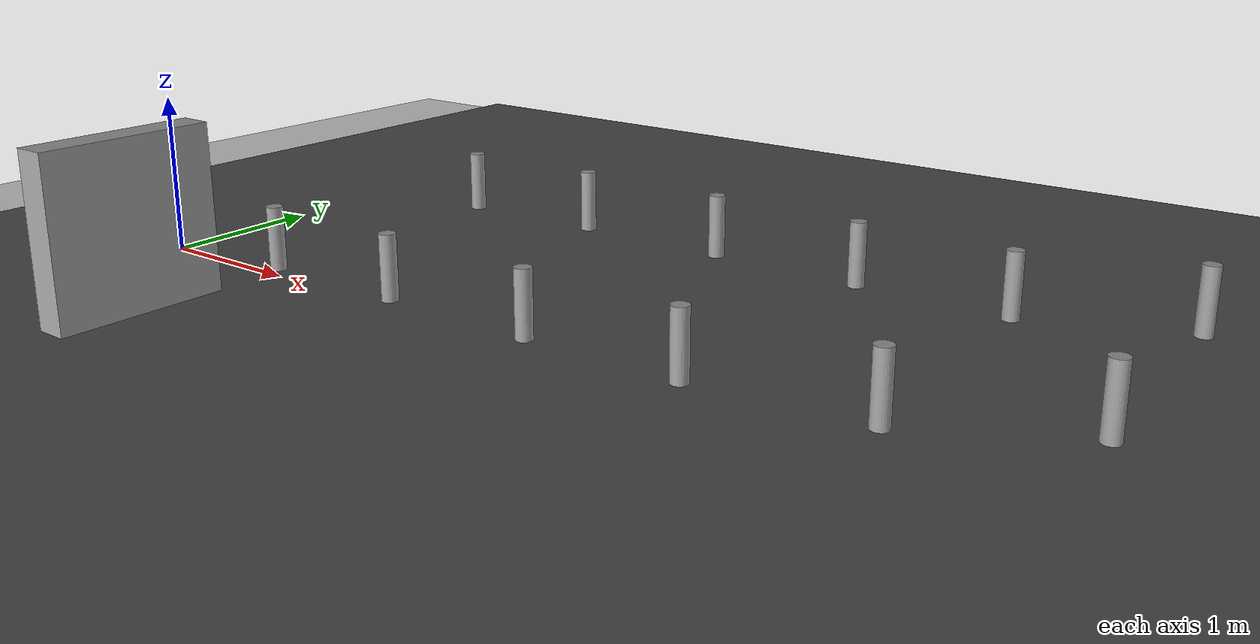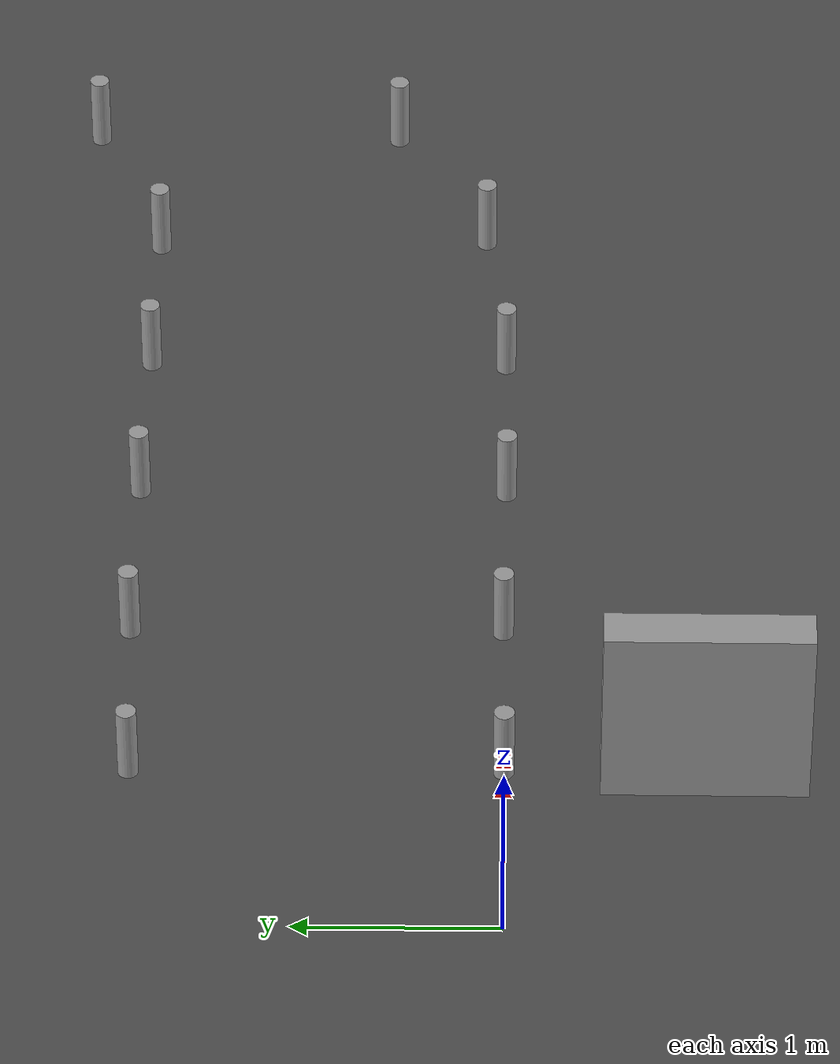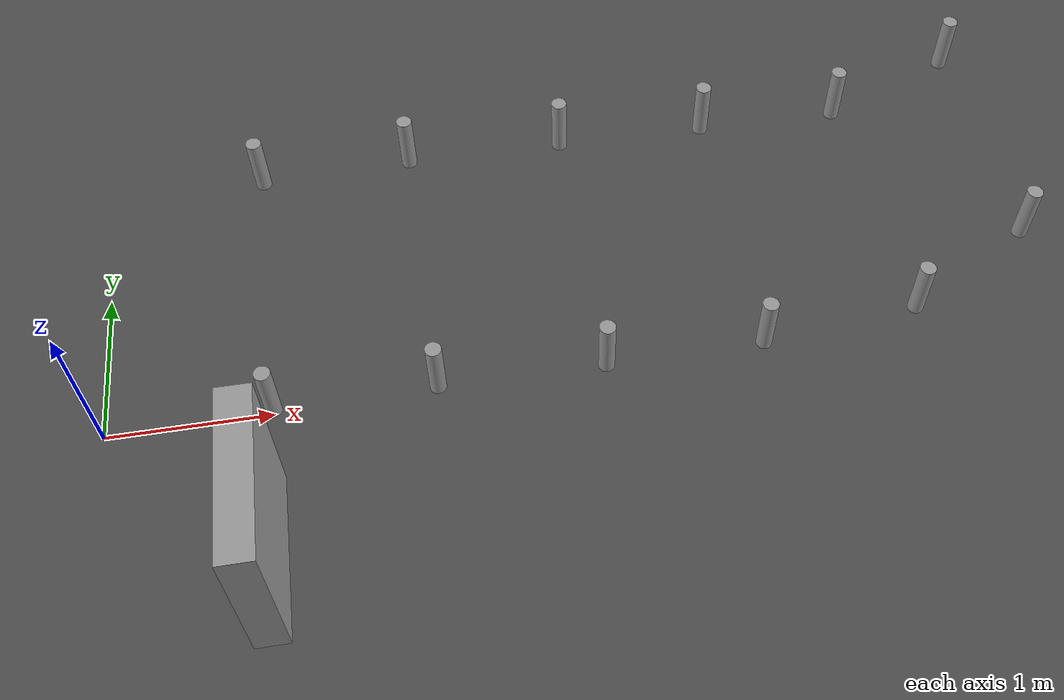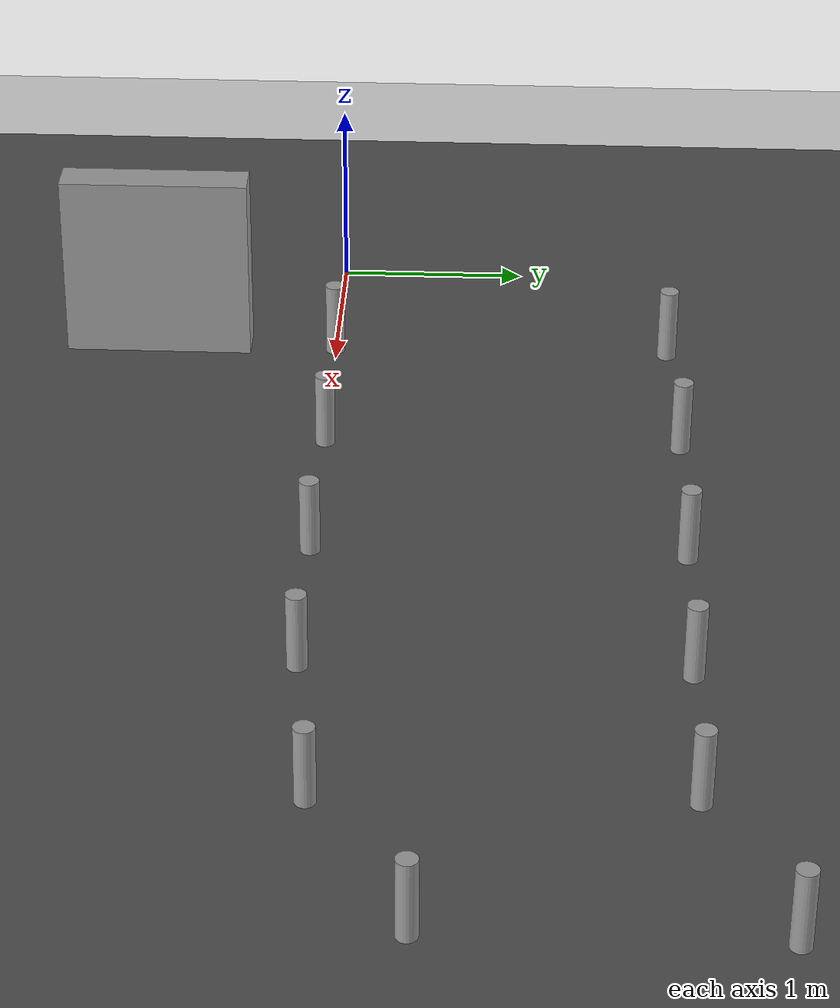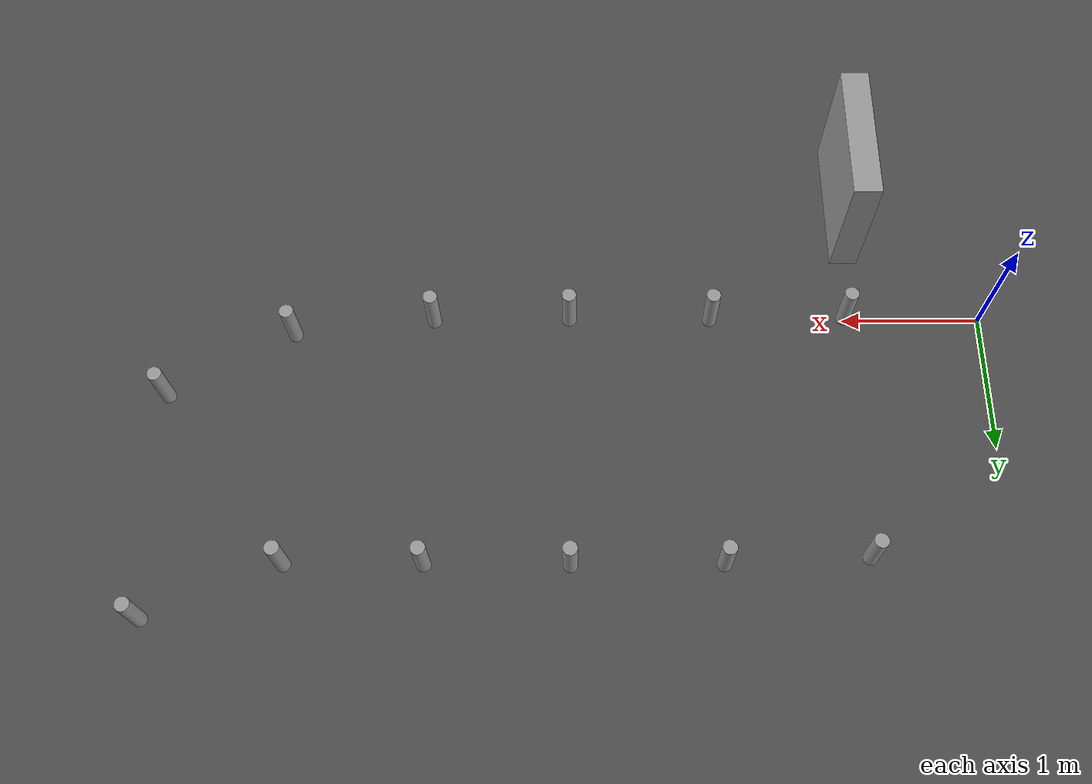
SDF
<sdf version="1.7">
 <world name="default">
  <model name="ground_plane">
   <static>1</static>
   <link name="link">
    <collision name="collision">
     <geometry><plane><normal>0 0 1</normal><size>100 100</size></plane></geometry>
     <surface>
      <contact><collide_bitmask>65535</collide_bitmask></contact>
      <friction><ode><mu>100</mu><mu2>50</mu2></ode></friction>
     </surface>
    </collision>
    <visual name="visual">
     <cast_shadows>0</cast_shadows>
     <geometry><plane><normal>0 0 1</normal><size>100 100</size></plane></geometry>
     <material>
      <script><uri>file://media/materials/scripts/gazebo.material</uri><name>Gazebo/Grey</name></script>
     </material>
    </visual>
   </link>
  </model>
  <model name="Cone">
   <link name="link_1">
    <inertial>
     <mass>1</mass>
     <inertia><ixx>0.145833</ixx><ixy>0</ixy><ixz>0</ixz><iyy>0.145833</iyy><iyz>0</iyz><izz>0.125</izz></inertia>
    </inertial>
    <visual name="visual">
     <geometry><cylinder><radius>0.05</radius><length>0.4</length></cylinder></geometry>
     <material>
      <lighting>1</lighting>
      <script><uri>file://media/materials/scripts/gazebo.material</uri><name>Gazebo/Grey</name></script>
      <shader type="pixel"><normal_map>__default__</normal_map></shader>
      <ambient>1 1 1 1</ambient>
      <diffuse>1 1 1 1</diffuse>
      <specular>0.01 0.01 0.01 1</specular>
      <emissive>0 0 0 1</emissive>
     </material>
    </visual>
    <collision name="collision">
     <geometry><cylinder><radius>0.05</radius><length>0.4</length></cylinder></geometry>
     <surface>
      <friction>
       <ode><mu>1</mu><mu2>1</mu2><fdir1>0 0 0</fdir1><slip1>0</slip1><slip2>0</slip2></ode>
       <torsional>
        <coefficient>1</coefficient>
        <patch_radius>0</patch_radius>
        <surface_radius>0</surface_radius>
        <use_patch_radius>1</use_patch_radius>
        <ode><slip>0</slip></ode>
       </torsional>
      </friction>
      <bounce><restitution_coefficient>0</restitution_coefficient><threshold>1e+06</threshold></bounce>
      <contact>
       <collide_without_contact>0</collide_without_contact>
       <collide_without_contact_bitmask>1</collide_without_contact_bitmask>
       <collide_bitmask>1</collide_bitmask>
       <ode>
        <soft_cfm>0</soft_cfm>
        <soft_erp>0.2</soft_erp>
        <kp>1e+13</kp>
        <kd>1</kd>
        <max_vel>0.01</max_vel>
        <min_depth>0</min_depth>
       </ode>
       <bullet>
        <split_impulse>1</split_impulse>
        <split_impulse_penetration_threshold>-0.01</split_impulse_penetration_threshold>
        <soft_cfm>0</soft_cfm>
        <soft_erp>0.2</soft_erp>
        <kp>1e+13</kp>
        <kd>1</kd>
       </bullet>
      </contact>
     </surface>
    </collision>
   </link>
   <static>0</static>
   <pose>0.999771 7e-05 0.249999 -2.9e-05 6.5e-05 -0.000279</pose>
  </model>
  <model name="Obstacle">
   <link name="link_4">
    <inertial>
     <mass>1</mass>
     <inertia>
      <ixx>0.166667</ixx>
      <ixy>0</ixy>
      <ixz>0</ixz>
      <iyy>0.166667</iyy>
      <iyz>0</iyz>
      <izz>0.166667</izz>
     </inertia>
    </inertial>
    <visual name="visual">
     <geometry><box><size>0.2 1 1</size></box></geometry>
     <material>
      <lighting>1</lighting>
      <script><uri>file://media/materials/scripts/gazebo.material</uri><name>Gazebo/Grey</name></script>
      <shader type="pixel"><normal_map>__default__</normal_map></shader>
      <ambient>0 0 0 1</ambient>
      <diffuse>0 0 0 1</diffuse>
      <specular>0.01 0.01 0.01 1</specular>
      <emissive>0 0 0 1</emissive>
     </material>
    </visual>
    <collision name="collision">
     <geometry><box><size>0.2 1 1</size></box></geometry>
     <surface>
      <friction>
       <ode><mu>1</mu><mu2>1</mu2><fdir1>0 0 0</fdir1><slip1>0</slip1><slip2>0</slip2></ode>
       <torsional>
        <coefficient>1</coefficient>
        <patch_radius>0</patch_radius>
        <surface_radius>0</surface_radius>
        <use_patch_radius>1</use_patch_radius>
        <ode><slip>0</slip></ode>
       </torsional>
      </friction>
      <bounce><restitution_coefficient>0</restitution_coefficient><threshold>1e+06</threshold></bounce>
      <contact>
       <collide_without_contact>0</collide_without_contact>
       <collide_without_contact_bitmask>1</collide_without_contact_bitmask>
       <collide_bitmask>1</collide_bitmask>
       <ode>
        <soft_cfm>0</soft_cfm>
        <soft_erp>0.2</soft_erp>
        <kp>1e+13</kp>
        <kd>1</kd>
        <max_vel>0.01</max_vel>
        <min_depth>0</min_depth>
       </ode>
       <bullet>
        <split_impulse>1</split_impulse>
        <split_impulse_penetration_threshold>-0.01</split_impulse_penetration_threshold>
        <soft_cfm>0</soft_cfm>
        <soft_erp>0.2</soft_erp>
        <kp>1e+13</kp>
        <kd>1</kd>
       </bullet>
      </contact>
     </surface>
    </collision>
   </link>
   <static>0</static>
   <pose>0.955546 -0.96149 0.55 0 0 -6e-06</pose>
  </model>
  <model name="Cone_clone">
   <link name="link_1">
    <inertial>
     <mass>1</mass>
     <inertia><ixx>0.145833</ixx><ixy>0</ixy><ixz>0</ixz><iyy>0.145833</iyy><iyz>0</iyz><izz>0.125</izz></inertia>
    </inertial>
    <visual name="visual">
     <geometry><cylinder><radius>0.05</radius><length>0.4</length></cylinder></geometry>
     <material>
      <lighting>1</lighting>
      <script><uri>file://media/materials/scripts/gazebo.material</uri><name>Gazebo/Grey</name></script>
      <shader type="pixel"><normal_map>__default__</normal_map></shader>
      <ambient>1 1 1 1</ambient>
      <diffuse>1 1 1 1</diffuse>
      <specular>0.01 0.01 0.01 1</specular>
      <emissive>0 0 0 1</emissive>
     </material>
    </visual>
    <collision name="collision">
     <geometry><cylinder><radius>0.05</radius><length>0.4</length></cylinder></geometry>
     <surface>
      <friction>
       <ode><mu>1</mu><mu2>1</mu2><fdir1>0 0 0</fdir1><slip1>0</slip1><slip2>0</slip2></ode>
       <torsional>
        <coefficient>1</coefficient>
        <patch_radius>0</patch_radius>
        <surface_radius>0</surface_radius>
        <use_patch_radius>1</use_patch_radius>
        <ode><slip>0</slip></ode>
       </torsional>
      </friction>
      <bounce><restitution_coefficient>0</restitution_coefficient><threshold>1e+06</threshold></bounce>
      <contact>
       <collide_without_contact>0</collide_without_contact>
       <collide_without_contact_bitmask>1</collide_without_contact_bitmask>
       <collide_bitmask>1</collide_bitmask>
       <ode>
        <soft_cfm>0</soft_cfm>
        <soft_erp>0.2</soft_erp>
        <kp>1e+13</kp>
        <kd>1</kd>
        <max_vel>0.01</max_vel>
        <min_depth>0</min_depth>
       </ode>
       <bullet>
        <split_impulse>1</split_impulse>
        <split_impulse_penetration_threshold>-0.01</split_impulse_penetration_threshold>
        <soft_cfm>0</soft_cfm>
        <soft_erp>0.2</soft_erp>
        <kp>1e+13</kp>
        <kd>1</kd>
       </bullet>
      </contact>
     </surface>
    </collision>
   </link>
   <static>0</static>
   <pose>0.9838 1.80334 0.249999 -2.8e-05 6.4e-05 -0.000282</pose>
  </model>
  <model name="Cone_clone_0">
   <link name="link_1">
    <inertial>
     <mass>1</mass>
     <inertia><ixx>0.145833</ixx><ixy>0</ixy><ixz>0</ixz><iyy>0.145833</iyy><iyz>0</iyz><izz>0.125</izz></inertia>
    </inertial>
    <visual name="visual">
     <geometry><cylinder><radius>0.05</radius><length>0.4</length></cylinder></geometry>
     <material>
      <lighting>1</lighting>
      <script><uri>file://media/materials/scripts/gazebo.material</uri><name>Gazebo/Grey</name></script>
      <shader type="pixel"><normal_map>__default__</normal_map></shader>
      <ambient>1 1 1 1</ambient>
      <diffuse>1 1 1 1</diffuse>
      <specular>0.01 0.01 0.01 1</specular>
      <emissive>0 0 0 1</emissive>
     </material>
    </visual>
    <collision name="collision">
     <geometry><cylinder><radius>0.05</radius><length>0.4</length></cylinder></geometry>
     <surface>
      <friction>
       <ode><mu>1</mu><mu2>1</mu2><fdir1>0 0 0</fdir1><slip1>0</slip1><slip2>0</slip2></ode>
       <torsional>
        <coefficient>1</coefficient>
        <patch_radius>0</patch_radius>
        <surface_radius>0</surface_radius>
        <use_patch_radius>1</use_patch_radius>
        <ode><slip>0</slip></ode>
       </torsional>
      </friction>
      <bounce><restitution_coefficient>0</restitution_coefficient><threshold>1e+06</threshold></bounce>
      <contact>
       <collide_without_contact>0</collide_without_contact>
       <collide_without_contact_bitmask>1</collide_without_contact_bitmask>
       <collide_bitmask>1</collide_bitmask>
       <ode>
        <soft_cfm>0</soft_cfm>
        <soft_erp>0.2</soft_erp>
        <kp>1e+13</kp>
        <kd>1</kd>
        <max_vel>0.01</max_vel>
        <min_depth>0</min_depth>
       </ode>
       <bullet>
        <split_impulse>1</split_impulse>
        <split_impulse_penetration_threshold>-0.01</split_impulse_penetration_threshold>
        <soft_cfm>0</soft_cfm>
        <soft_erp>0.2</soft_erp>
        <kp>1e+13</kp>
        <kd>1</kd>
       </bullet>
      </contact>
     </surface>
    </collision>
   </link>
   <static>0</static>
   <pose>1.97792 0.007597 0.249998 -2.7e-05 6e-05 -0.000282</pose>
  </model>
  <model name="Cone_clone_1">
   <link name="link_1">
    <inertial>
     <mass>1</mass>
     <inertia><ixx>0.145833</ixx><ixy>0</ixy><ixz>0</ixz><iyy>0.145833</iyy><iyz>0</iyz><izz>0.125</izz></inertia>
    </inertial>
    <visual name="visual">
     <geometry><cylinder><radius>0.05</radius><length>0.4</length></cylinder></geometry>
     <material>
      <lighting>1</lighting>
      <script><uri>file://media/materials/scripts/gazebo.material</uri><name>Gazebo/Grey</name></script>
      <shader type="pixel"><normal_map>__default__</normal_map></shader>
      <ambient>1 1 1 1</ambient>
      <diffuse>1 1 1 1</diffuse>
      <specular>0.01 0.01 0.01 1</specular>
      <emissive>0 0 0 1</emissive>
     </material>
    </visual>
    <collision name="collision">
     <geometry><cylinder><radius>0.05</radius><length>0.4</length></cylinder></geometry>
     <surface>
      <friction>
       <ode><mu>1</mu><mu2>1</mu2><fdir1>0 0 0</fdir1><slip1>0</slip1><slip2>0</slip2></ode>
       <torsional>
        <coefficient>1</coefficient>
        <patch_radius>0</patch_radius>
        <surface_radius>0</surface_radius>
        <use_patch_radius>1</use_patch_radius>
        <ode><slip>0</slip></ode>
       </torsional>
      </friction>
      <bounce><restitution_coefficient>0</restitution_coefficient><threshold>1e+06</threshold></bounce>
      <contact>
       <collide_without_contact>0</collide_without_contact>
       <collide_without_contact_bitmask>1</collide_without_contact_bitmask>
       <collide_bitmask>1</collide_bitmask>
       <ode>
        <soft_cfm>0</soft_cfm>
        <soft_erp>0.2</soft_erp>
        <kp>1e+13</kp>
        <kd>1</kd>
        <max_vel>0.01</max_vel>
        <min_depth>0</min_depth>
       </ode>
       <bullet>
        <split_impulse>1</split_impulse>
        <split_impulse_penetration_threshold>-0.01</split_impulse_penetration_threshold>
        <soft_cfm>0</soft_cfm>
        <soft_erp>0.2</soft_erp>
        <kp>1e+13</kp>
        <kd>1</kd>
       </bullet>
      </contact>
     </surface>
    </collision>
   </link>
   <static>0</static>
   <pose>3.00034 -0.001884 0.249999 -2.9e-05 6.4e-05 -0.000287</pose>
  </model>
  <model name="Cone_clone_2">
   <link name="link_1">
    <inertial>
     <mass>1</mass>
     <inertia><ixx>0.145833</ixx><ixy>0</ixy><ixz>0</ixz><iyy>0.145833</iyy><iyz>0</iyz><izz>0.125</izz></inertia>
    </inertial>
    <visual name="visual">
     <geometry><cylinder><radius>0.05</radius><length>0.4</length></cylinder></geometry>
     <material>
      <lighting>1</lighting>
      <script><uri>file://media/materials/scripts/gazebo.material</uri><name>Gazebo/Grey</name></script>
      <shader type="pixel"><normal_map>__default__</normal_map></shader>
      <ambient>1 1 1 1</ambient>
      <diffuse>1 1 1 1</diffuse>
      <specular>0.01 0.01 0.01 1</specular>
      <emissive>0 0 0 1</emissive>
     </material>
    </visual>
    <collision name="collision">
     <geometry><cylinder><radius>0.05</radius><length>0.4</length></cylinder></geometry>
     <surface>
      <friction>
       <ode><mu>1</mu><mu2>1</mu2><fdir1>0 0 0</fdir1><slip1>0</slip1><slip2>0</slip2></ode>
       <torsional>
        <coefficient>1</coefficient>
        <patch_radius>0</patch_radius>
        <surface_radius>0</surface_radius>
        <use_patch_radius>1</use_patch_radius>
        <ode><slip>0</slip></ode>
       </torsional>
      </friction>
      <bounce><restitution_coefficient>0</restitution_coefficient><threshold>1e+06</threshold></bounce>
      <contact>
       <collide_without_contact>0</collide_without_contact>
       <collide_without_contact_bitmask>1</collide_without_contact_bitmask>
       <collide_bitmask>1</collide_bitmask>
       <ode>
        <soft_cfm>0</soft_cfm>
        <soft_erp>0.2</soft_erp>
        <kp>1e+13</kp>
        <kd>1</kd>
        <max_vel>0.01</max_vel>
        <min_depth>0</min_depth>
       </ode>
       <bullet>
        <split_impulse>1</split_impulse>
        <split_impulse_penetration_threshold>-0.01</split_impulse_penetration_threshold>
        <soft_cfm>0</soft_cfm>
        <soft_erp>0.2</soft_erp>
        <kp>1e+13</kp>
        <kd>1</kd>
       </bullet>
      </contact>
     </surface>
    </collision>
   </link>
   <static>0</static>
   <pose>3.98344 0.005772 0.25 -3.7e-05 8.4e-05 5e-05</pose>
  </model>
  <model name="Cone_clone_3">
   <link name="link_1">
    <inertial>
     <mass>1</mass>
     <inertia><ixx>0.145833</ixx><ixy>0</ixy><ixz>0</ixz><iyy>0.145833</iyy><iyz>0</iyz><izz>0.125</izz></inertia>
    </inertial>
    <visual name="visual">
     <geometry><cylinder><radius>0.05</radius><length>0.4</length></cylinder></geometry>
     <material>
      <lighting>1</lighting>
      <script><uri>file://media/materials/scripts/gazebo.material</uri><name>Gazebo/Grey</name></script>
      <shader type="pixel"><normal_map>__default__</normal_map></shader>
      <ambient>1 1 1 1</ambient>
      <diffuse>1 1 1 1</diffuse>
      <specular>0.01 0.01 0.01 1</specular>
      <emissive>0 0 0 1</emissive>
     </material>
    </visual>
    <collision name="collision">
     <geometry><cylinder><radius>0.05</radius><length>0.4</length></cylinder></geometry>
     <surface>
      <friction>
       <ode><mu>1</mu><mu2>1</mu2><fdir1>0 0 0</fdir1><slip1>0</slip1><slip2>0</slip2></ode>
       <torsional>
        <coefficient>1</coefficient>
        <patch_radius>0</patch_radius>
        <surface_radius>0</surface_radius>
        <use_patch_radius>1</use_patch_radius>
        <ode><slip>0</slip></ode>
       </torsional>
      </friction>
      <bounce><restitution_coefficient>0</restitution_coefficient><threshold>1e+06</threshold></bounce>
      <contact>
       <collide_without_contact>0</collide_without_contact>
       <collide_without_contact_bitmask>1</collide_without_contact_bitmask>
       <collide_bitmask>1</collide_bitmask>
       <ode>
        <soft_cfm>0</soft_cfm>
        <soft_erp>0.2</soft_erp>
        <kp>1e+13</kp>
        <kd>1</kd>
        <max_vel>0.01</max_vel>
        <min_depth>0</min_depth>
       </ode>
       <bullet>
        <split_impulse>1</split_impulse>
        <split_impulse_penetration_threshold>-0.01</split_impulse_penetration_threshold>
        <soft_cfm>0</soft_cfm>
        <soft_erp>0.2</soft_erp>
        <kp>1e+13</kp>
        <kd>1</kd>
       </bullet>
      </contact>
     </surface>
    </collision>
   </link>
   <static>0</static>
   <pose>4.9866 0.112679 0.25 -4.7e-05 8.5e-05 1.4e-05</pose>
  </model>
  <model name="Cone_clone_4">
   <link name="link_1">
    <inertial>
     <mass>1</mass>
     <inertia><ixx>0.145833</ixx><ixy>0</ixy><ixz>0</ixz><iyy>0.145833</iyy><iyz>0</iyz><izz>0.125</izz></inertia>
    </inertial>
    <visual name="visual">
     <geometry><cylinder><radius>0.05</radius><length>0.4</length></cylinder></geometry>
     <material>
      <lighting>1</lighting>
      <script><uri>file://media/materials/scripts/gazebo.material</uri><name>Gazebo/Grey</name></script>
      <shader type="pixel"><normal_map>__default__</normal_map></shader>
      <ambient>1 1 1 1</ambient>
      <diffuse>1 1 1 1</diffuse>
      <specular>0.01 0.01 0.01 1</specular>
      <emissive>0 0 0 1</emissive>
     </material>
    </visual>
    <collision name="collision">
     <geometry><cylinder><radius>0.05</radius><length>0.4</length></cylinder></geometry>
     <surface>
      <friction>
       <ode><mu>1</mu><mu2>1</mu2><fdir1>0 0 0</fdir1><slip1>0</slip1><slip2>0</slip2></ode>
       <torsional>
        <coefficient>1</coefficient>
        <patch_radius>0</patch_radius>
        <surface_radius>0</surface_radius>
        <use_patch_radius>1</use_patch_radius>
        <ode><slip>0</slip></ode>
       </torsional>
      </friction>
      <bounce><restitution_coefficient>0</restitution_coefficient><threshold>1e+06</threshold></bounce>
      <contact>
       <collide_without_contact>0</collide_without_contact>
       <collide_without_contact_bitmask>1</collide_without_contact_bitmask>
       <collide_bitmask>1</collide_bitmask>
       <ode>
        <soft_cfm>0</soft_cfm>
        <soft_erp>0.2</soft_erp>
        <kp>1e+13</kp>
        <kd>1</kd>
        <max_vel>0.01</max_vel>
        <min_depth>0</min_depth>
       </ode>
       <bullet>
        <split_impulse>1</split_impulse>
        <split_impulse_penetration_threshold>-0.01</split_impulse_penetration_threshold>
        <soft_cfm>0</soft_cfm>
        <soft_erp>0.2</soft_erp>
        <kp>1e+13</kp>
        <kd>1</kd>
       </bullet>
      </contact>
     </surface>
    </collision>
   </link>
   <static>0</static>
   <pose>5.84823 0.587319 0.249999 -4.5e-05 6.1e-05 8.2e-05</pose>
  </model>
  <model name="Cone_clone_24">
   <link name="link_1">
    <inertial>
     <mass>1</mass>
     <inertia><ixx>0.145833</ixx><ixy>0</ixy><ixz>0</ixz><iyy>0.145833</iyy><iyz>0</iyz><izz>0.125</izz></inertia>
    </inertial>
    <visual name="visual">
     <geometry><cylinder><radius>0.05</radius><length>0.4</length></cylinder></geometry>
     <material>
      <lighting>1</lighting>
      <script><uri>file://media/materials/scripts/gazebo.material</uri><name>Gazebo/Grey</name></script>
      <shader type="pixel"><normal_map>__default__</normal_map></shader>
      <ambient>1 1 1 1</ambient>
      <diffuse>1 1 1 1</diffuse>
      <specular>0.01 0.01 0.01 1</specular>
      <emissive>0 0 0 1</emissive>
     </material>
    </visual>
    <collision name="collision">
     <geometry><cylinder><radius>0.05</radius><length>0.4</length></cylinder></geometry>
     <surface>
      <friction>
       <ode><mu>1</mu><mu2>1</mu2><fdir1>0 0 0</fdir1><slip1>0</slip1><slip2>0</slip2></ode>
       <torsional>
        <coefficient>1</coefficient>
        <patch_radius>0</patch_radius>
        <surface_radius>0</surface_radius>
        <use_patch_radius>1</use_patch_radius>
        <ode><slip>0</slip></ode>
       </torsional>
      </friction>
      <bounce><restitution_coefficient>0</restitution_coefficient><threshold>1e+06</threshold></bounce>
      <contact>
       <collide_without_contact>0</collide_without_contact>
       <collide_without_contact_bitmask>1</collide_without_contact_bitmask>
       <collide_bitmask>1</collide_bitmask>
       <ode>
        <soft_cfm>0</soft_cfm>
        <soft_erp>0.2</soft_erp>
        <kp>1e+13</kp>
        <kd>1</kd>
        <max_vel>0.01</max_vel>
        <min_depth>0</min_depth>
       </ode>
       <bullet>
        <split_impulse>1</split_impulse>
        <split_impulse_penetration_threshold>-0.01</split_impulse_penetration_threshold>
        <soft_cfm>0</soft_cfm>
        <soft_erp>0.2</soft_erp>
        <kp>1e+13</kp>
        <kd>1</kd>
       </bullet>
      </contact>
     </surface>
    </collision>
   </link>
   <static>0</static>
   <pose>1.96655 1.84182 0.249999 -2.7e-05 6.3e-05 -0.000262</pose>
  </model>
  <model name="Cone_clone_25">
   <link name="link_1">
    <inertial>
     <mass>1</mass>
     <inertia><ixx>0.145833</ixx><ixy>0</ixy><ixz>0</ixz><iyy>0.145833</iyy><iyz>0</iyz><izz>0.125</izz></inertia>
    </inertial>
    <visual name="visual">
     <geometry><cylinder><radius>0.05</radius><length>0.4</length></cylinder></geometry>
     <material>
      <lighting>1</lighting>
      <script><uri>file://media/materials/scripts/gazebo.material</uri><name>Gazebo/Grey</name></script>
      <shader type="pixel"><normal_map>__default__</normal_map></shader>
      <ambient>1 1 1 1</ambient>
      <diffuse>1 1 1 1</diffuse>
      <specular>0.01 0.01 0.01 1</specular>
      <emissive>0 0 0 1</emissive>
     </material>
    </visual>
    <collision name="collision">
     <geometry><cylinder><radius>0.05</radius><length>0.4</length></cylinder></geometry>
     <surface>
      <friction>
       <ode><mu>1</mu><mu2>1</mu2><fdir1>0 0 0</fdir1><slip1>0</slip1><slip2>0</slip2></ode>
       <torsional>
        <coefficient>1</coefficient>
        <patch_radius>0</patch_radius>
        <surface_radius>0</surface_radius>
        <use_patch_radius>1</use_patch_radius>
        <ode><slip>0</slip></ode>
       </torsional>
      </friction>
      <bounce><restitution_coefficient>0</restitution_coefficient><threshold>1e+06</threshold></bounce>
      <contact>
       <collide_without_contact>0</collide_without_contact>
       <collide_without_contact_bitmask>1</collide_without_contact_bitmask>
       <collide_bitmask>1</collide_bitmask>
       <ode>
        <soft_cfm>0</soft_cfm>
        <soft_erp>0.2</soft_erp>
        <kp>1e+13</kp>
        <kd>1</kd>
        <max_vel>0.01</max_vel>
        <min_depth>0</min_depth>
       </ode>
       <bullet>
        <split_impulse>1</split_impulse>
        <split_impulse_penetration_threshold>-0.01</split_impulse_penetration_threshold>
        <soft_cfm>0</soft_cfm>
        <soft_erp>0.2</soft_erp>
        <kp>1e+13</kp>
        <kd>1</kd>
       </bullet>
      </contact>
     </surface>
    </collision>
   </link>
   <static>0</static>
   <pose>3.0002 1.84067 0.249999 -3.1e-05 6.4e-05 1e-06</pose>
  </model>
  <model name="Cone_clone_26">
   <link name="link_1">
    <inertial>
     <mass>1</mass>
     <inertia><ixx>0.145833</ixx><ixy>0</ixy><ixz>0</ixz><iyy>0.145833</iyy><iyz>0</iyz><izz>0.125</izz></inertia>
    </inertial>
    <visual name="visual">
     <geometry><cylinder><radius>0.05</radius><length>0.4</length></cylinder></geometry>
     <material>
      <lighting>1</lighting>
      <script><uri>file://media/materials/scripts/gazebo.material</uri><name>Gazebo/Grey</name></script>
      <shader type="pixel"><normal_map>__default__</normal_map></shader>
      <ambient>1 1 1 1</ambient>
      <diffuse>1 1 1 1</diffuse>
      <specular>0.01 0.01 0.01 1</specular>
      <emissive>0 0 0 1</emissive>
     </material>
    </visual>
    <collision name="collision">
     <geometry><cylinder><radius>0.05</radius><length>0.4</length></cylinder></geometry>
     <surface>
      <friction>
       <ode><mu>1</mu><mu2>1</mu2><fdir1>0 0 0</fdir1><slip1>0</slip1><slip2>0</slip2></ode>
       <torsional>
        <coefficient>1</coefficient>
        <patch_radius>0</patch_radius>
        <surface_radius>0</surface_radius>
        <use_patch_radius>1</use_patch_radius>
        <ode><slip>0</slip></ode>
       </torsional>
      </friction>
      <bounce><restitution_coefficient>0</restitution_coefficient><threshold>1e+06</threshold></bounce>
      <contact>
       <collide_without_contact>0</collide_without_contact>
       <collide_without_contact_bitmask>1</collide_without_contact_bitmask>
       <collide_bitmask>1</collide_bitmask>
       <ode>
        <soft_cfm>0</soft_cfm>
        <soft_erp>0.2</soft_erp>
        <kp>1e+13</kp>
        <kd>1</kd>
        <max_vel>0.01</max_vel>
        <min_depth>0</min_depth>
       </ode>
       <bullet>
        <split_impulse>1</split_impulse>
        <split_impulse_penetration_threshold>-0.01</split_impulse_penetration_threshold>
        <soft_cfm>0</soft_cfm>
        <soft_erp>0.2</soft_erp>
        <kp>1e+13</kp>
        <kd>1</kd>
       </bullet>
      </contact>
     </surface>
    </collision>
   </link>
   <static>0</static>
   <pose>3.98602 1.8301 0.249999 -3.8e-05 5.9e-05 6.7e-05</pose>
  </model>
  <model name="Cone_clone_27">
   <link name="link_1">
    <inertial>
     <mass>1</mass>
     <inertia><ixx>0.145833</ixx><ixy>0</ixy><ixz>0</ixz><iyy>0.145833</iyy><iyz>0</iyz><izz>0.125</izz></inertia>
    </inertial>
    <visual name="visual">
     <geometry><cylinder><radius>0.05</radius><length>0.4</length></cylinder></geometry>
     <material>
      <lighting>1</lighting>
      <script><uri>file://media/materials/scripts/gazebo.material</uri><name>Gazebo/Grey</name></script>
      <shader type="pixel"><normal_map>__default__</normal_map></shader>
      <ambient>1 1 1 1</ambient>
      <diffuse>1 1 1 1</diffuse>
      <specular>0.01 0.01 0.01 1</specular>
      <emissive>0 0 0 1</emissive>
     </material>
    </visual>
    <collision name="collision">
     <geometry><cylinder><radius>0.05</radius><length>0.4</length></cylinder></geometry>
     <surface>
      <friction>
       <ode><mu>1</mu><mu2>1</mu2><fdir1>0 0 0</fdir1><slip1>0</slip1><slip2>0</slip2></ode>
       <torsional>
        <coefficient>1</coefficient>
        <patch_radius>0</patch_radius>
        <surface_radius>0</surface_radius>
        <use_patch_radius>1</use_patch_radius>
        <ode><slip>0</slip></ode>
       </torsional>
      </friction>
      <bounce><restitution_coefficient>0</restitution_coefficient><threshold>1e+06</threshold></bounce>
      <contact>
       <collide_without_contact>0</collide_without_contact>
       <collide_without_contact_bitmask>1</collide_without_contact_bitmask>
       <collide_bitmask>1</collide_bitmask>
       <ode>
        <soft_cfm>0</soft_cfm>
        <soft_erp>0.2</soft_erp>
        <kp>1e+13</kp>
        <kd>1</kd>
        <max_vel>0.01</max_vel>
        <min_depth>0</min_depth>
       </ode>
       <bullet>
        <split_impulse>1</split_impulse>
        <split_impulse_penetration_threshold>-0.01</split_impulse_penetration_threshold>
        <soft_cfm>0</soft_cfm>
        <soft_erp>0.2</soft_erp>
        <kp>1e+13</kp>
        <kd>1</kd>
       </bullet>
      </contact>
     </surface>
    </collision>
   </link>
   <static>0</static>
   <pose>4.92777 1.82375 0.249999 -4.6e-05 6.7e-05 3.7e-05</pose>
  </model>
  <model name="Cone_clone_28">
   <link name="link_1">
    <inertial>
     <mass>1</mass>
     <inertia><ixx>0.145833</ixx><ixy>0</ixy><ixz>0</ixz><iyy>0.145833</iyy><iyz>0</iyz><izz>0.125</izz></inertia>
    </inertial>
    <visual name="visual">
     <geometry><cylinder><radius>0.05</radius><length>0.4</length></cylinder></geometry>
     <material>
      <lighting>1</lighting>
      <script><uri>file://media/materials/scripts/gazebo.material</uri><name>Gazebo/Grey</name></script>
      <shader type="pixel"><normal_map>__default__</normal_map></shader>
      <ambient>1 1 1 1</ambient>
      <diffuse>1 1 1 1</diffuse>
      <specular>0.01 0.01 0.01 1</specular>
      <emissive>0 0 0 1</emissive>
     </material>
    </visual>
    <collision name="collision">
     <geometry><cylinder><radius>0.05</radius><length>0.4</length></cylinder></geometry>
     <surface>
      <friction>
       <ode><mu>1</mu><mu2>1</mu2><fdir1>0 0 0</fdir1><slip1>0</slip1><slip2>0</slip2></ode>
       <torsional>
        <coefficient>1</coefficient>
        <patch_radius>0</patch_radius>
        <surface_radius>0</surface_radius>
        <use_patch_radius>1</use_patch_radius>
        <ode><slip>0</slip></ode>
       </torsional>
      </friction>
      <bounce><restitution_coefficient>0</restitution_coefficient><threshold>1e+06</threshold></bounce>
      <contact>
       <collide_without_contact>0</collide_without_contact>
       <collide_without_contact_bitmask>1</collide_without_contact_bitmask>
       <collide_bitmask>1</collide_bitmask>
       <ode>
        <soft_cfm>0</soft_cfm>
        <soft_erp>0.2</soft_erp>
        <kp>1e+13</kp>
        <kd>1</kd>
        <max_vel>0.01</max_vel>
        <min_depth>0</min_depth>
       </ode>
       <bullet>
        <split_impulse>1</split_impulse>
        <split_impulse_penetration_threshold>-0.01</split_impulse_penetration_threshold>
        <soft_cfm>0</soft_cfm>
        <soft_erp>0.2</soft_erp>
        <kp>1e+13</kp>
        <kd>1</kd>
       </bullet>
      </contact>
     </surface>
    </collision>
   </link>
   <static>0</static>
   <pose>5.83921 2.18685 0.249999 -6.7e-05 3.1e-05 7.3e-05</pose>
  </model>
  <model name="asphalt_plane">
   <static>1</static>
   <link name="link">
    <collision name="collision"><geometry><box><size>20 20 0.1</size></box></geometry></collision>
    <visual name="visual">
     <cast_shadows>0</cast_shadows>
     <geometry><box><size>20 20 0.1</size></box></geometry>
     <material>
      <script>
       <uri>model://asphalt_plane/materials/scripts</uri>
       <uri>model://asphalt_plane/materials/textures</uri>
       <name>vrc/asphalt</name>
      </script>
     </material>
    </visual>
   </link>
   <pose>8.33296 1.58743 0 0 -0 0</pose>
  </model>
 </world>
</sdf>
